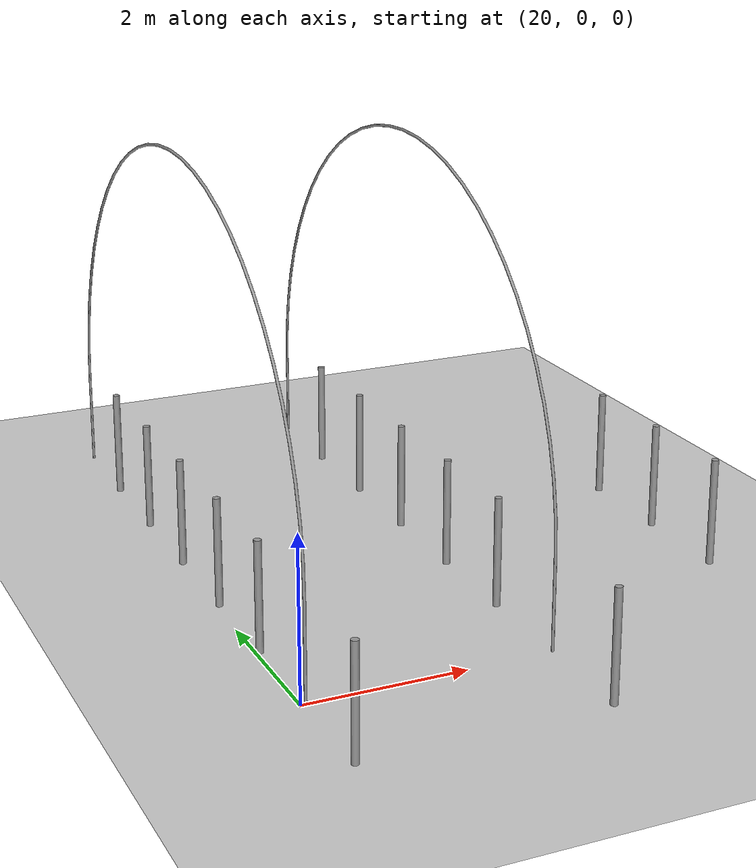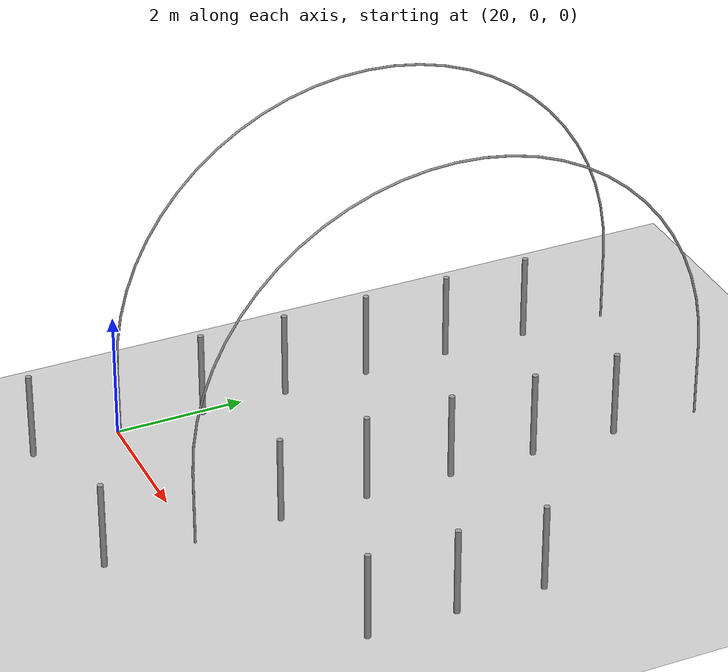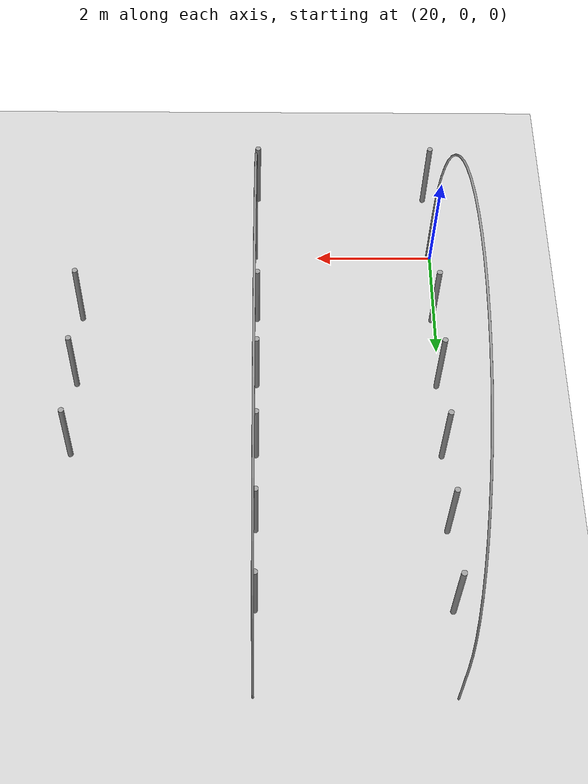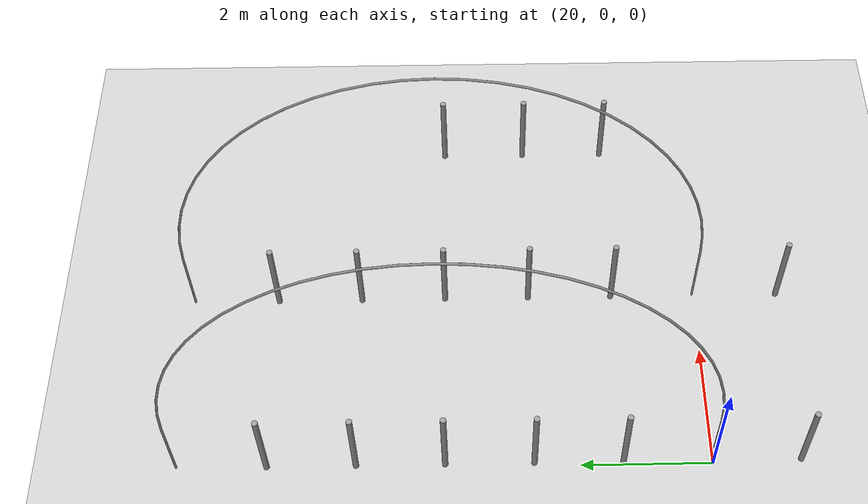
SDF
<sdf version="1.6">
 <world name="default">
  <model name="unit_cylinder_25">
   <static>1</static>
   <pose>20.05 1.35 0.691175 0 -0 0</pose>
   <link name="link">
    <inertial>
     <mass>1</mass>
     <inertia><ixz>0</ixz><ixx>1</ixx><ixy>0</ixy><izz>1</izz><iyy>1</iyy><iyz>0</iyz></inertia>
    </inertial>
    <collision name="collision">
     <geometry><cylinder><length>1.38235</length><radius>0.0456111</radius></cylinder></geometry>
    </collision>
    <visual name="visual">
     <geometry><cylinder><length>1.38235</length><radius>0.0456111</radius></cylinder></geometry>
     <material>
      <script><uri>file://media/materials/scripts/gazebo.material</uri><name>Gazebo/Grey</name></script>
     </material>
    </visual>
    <velocity_decay><linear>0</linear><angular>0</angular></velocity_decay>
   </link>
  </model>
  <model name="unit_cylinder_26">
   <static>1</static>
   <pose>20.05 2.7 0.691175 0 -0 0</pose>
   <link name="link">
    <inertial>
     <mass>1</mass>
     <inertia><ixz>0</ixz><ixx>1</ixx><ixy>0</ixy><izz>1</izz><iyy>1</iyy><iyz>0</iyz></inertia>
    </inertial>
    <collision name="collision">
     <geometry><cylinder><length>1.38235</length><radius>0.0456111</radius></cylinder></geometry>
    </collision>
    <visual name="visual">
     <geometry><cylinder><length>1.38235</length><radius>0.0456111</radius></cylinder></geometry>
     <material>
      <script><uri>file://media/materials/scripts/gazebo.material</uri><name>Gazebo/Grey</name></script>
     </material>
    </visual>
    <velocity_decay><linear>0</linear><angular>0</angular></velocity_decay>
   </link>
  </model>
  <model name="unit_cylinder_27">
   <static>1</static>
   <pose>20.05 4.05 0.691175 0 -0 0</pose>
   <link name="link">
    <inertial>
     <mass>1</mass>
     <inertia><ixz>0</ixz><ixx>1</ixx><ixy>0</ixy><izz>1</izz><iyy>1</iyy><iyz>0</iyz></inertia>
    </inertial>
    <collision name="collision">
     <geometry><cylinder><length>1.38235</length><radius>0.0456111</radius></cylinder></geometry>
    </collision>
    <visual name="visual">
     <geometry><cylinder><length>1.38235</length><radius>0.0456111</radius></cylinder></geometry>
     <material>
      <script><uri>file://media/materials/scripts/gazebo.material</uri><name>Gazebo/Grey</name></script>
     </material>
    </visual>
    <velocity_decay><linear>0</linear><angular>0</angular></velocity_decay>
   </link>
  </model>
  <model name="unit_cylinder_28">
   <static>1</static>
   <pose>20.05 5.4 0.691175 0 -0 0</pose>
   <link name="link">
    <inertial>
     <mass>1</mass>
     <inertia><ixz>0</ixz><ixx>1</ixx><ixy>0</ixy><izz>1</izz><iyy>1</iyy><iyz>0</iyz></inertia>
    </inertial>
    <collision name="collision">
     <geometry><cylinder><length>1.38235</length><radius>0.0456111</radius></cylinder></geometry>
    </collision>
    <visual name="visual">
     <geometry><cylinder><length>1.38235</length><radius>0.0456111</radius></cylinder></geometry>
     <material>
      <script><uri>file://media/materials/scripts/gazebo.material</uri><name>Gazebo/Grey</name></script>
     </material>
    </visual>
    <velocity_decay><linear>0</linear><angular>0</angular></velocity_decay>
   </link>
  </model>
  <model name="unit_cylinder_29">
   <static>1</static>
   <pose>20.05 6.75 0.691175 0 -0 0</pose>
   <link name="link">
    <inertial>
     <mass>1</mass>
     <inertia><ixz>0</ixz><ixx>1</ixx><ixy>0</ixy><izz>1</izz><iyy>1</iyy><iyz>0</iyz></inertia>
    </inertial>
    <collision name="collision">
     <geometry><cylinder><length>1.38235</length><radius>0.0456111</radius></cylinder></geometry>
    </collision>
    <visual name="visual">
     <geometry><cylinder><length>1.38235</length><radius>0.0456111</radius></cylinder></geometry>
     <material>
      <script><uri>file://media/materials/scripts/gazebo.material</uri><name>Gazebo/Grey</name></script>
     </material>
    </visual>
    <velocity_decay><linear>0</linear><angular>0</angular></velocity_decay>
   </link>
  </model>
  <model name="unit_cylinder_30">
   <static>1</static>
   <pose>23.06 1.35 0.691175 0 -0 0</pose>
   <link name="link">
    <inertial>
     <mass>1</mass>
     <inertia><ixz>0</ixz><ixx>1</ixx><ixy>0</ixy><izz>1</izz><iyy>1</iyy><iyz>0</iyz></inertia>
    </inertial>
    <collision name="collision">
     <geometry><cylinder><length>1.38235</length><radius>0.0456111</radius></cylinder></geometry>
    </collision>
    <visual name="visual">
     <geometry><cylinder><length>1.38235</length><radius>0.0456111</radius></cylinder></geometry>
     <material>
      <script><uri>file://media/materials/scripts/gazebo.material</uri><name>Gazebo/Grey</name></script>
     </material>
    </visual>
    <velocity_decay><linear>0</linear><angular>0</angular></velocity_decay>
   </link>
  </model>
  <model name="unit_cylinder_31">
   <static>1</static>
   <pose>23.06 2.7 0.691175 0 -0 0</pose>
   <link name="link">
    <inertial>
     <mass>1</mass>
     <inertia><ixz>0</ixz><ixx>1</ixx><ixy>0</ixy><izz>1</izz><iyy>1</iyy><iyz>0</iyz></inertia>
    </inertial>
    <collision name="collision">
     <geometry><cylinder><length>1.38235</length><radius>0.0456111</radius></cylinder></geometry>
    </collision>
    <visual name="visual">
     <geometry><cylinder><length>1.38235</length><radius>0.0456111</radius></cylinder></geometry>
     <material>
      <script><uri>file://media/materials/scripts/gazebo.material</uri><name>Gazebo/Grey</name></script>
     </material>
    </visual>
    <velocity_decay><linear>0</linear><angular>0</angular></velocity_decay>
   </link>
  </model>
  <model name="unit_cylinder_32">
   <static>1</static>
   <pose>23.06 4.05 0.691175 0 -0 0</pose>
   <link name="link">
    <inertial>
     <mass>1</mass>
     <inertia><ixz>0</ixz><ixx>1</ixx><ixy>0</ixy><izz>1</izz><iyy>1</iyy><iyz>0</iyz></inertia>
    </inertial>
    <collision name="collision">
     <geometry><cylinder><length>1.38235</length><radius>0.0456111</radius></cylinder></geometry>
    </collision>
    <visual name="visual">
     <geometry><cylinder><length>1.38235</length><radius>0.0456111</radius></cylinder></geometry>
     <material>
      <script><uri>file://media/materials/scripts/gazebo.material</uri><name>Gazebo/Grey</name></script>
     </material>
    </visual>
    <velocity_decay><linear>0</linear><angular>0</angular></velocity_decay>
   </link>
  </model>
  <model name="unit_cylinder_33">
   <static>1</static>
   <pose>23.06 5.4 0.691175 0 -0 0</pose>
   <link name="link">
    <inertial>
     <mass>1</mass>
     <inertia><ixz>0</ixz><ixx>1</ixx><ixy>0</ixy><izz>1</izz><iyy>1</iyy><iyz>0</iyz></inertia>
    </inertial>
    <collision name="collision">
     <geometry><cylinder><length>1.38235</length><radius>0.0456111</radius></cylinder></geometry>
    </collision>
    <visual name="visual">
     <geometry><cylinder><length>1.38235</length><radius>0.0456111</radius></cylinder></geometry>
     <material>
      <script><uri>file://media/materials/scripts/gazebo.material</uri><name>Gazebo/Grey</name></script>
     </material>
    </visual>
    <velocity_decay><linear>0</linear><angular>0</angular></velocity_decay>
   </link>
  </model>
  <model name="unit_cylinder_34">
   <static>1</static>
   <pose>23.06 6.75 0.691175 0 -0 0</pose>
   <link name="link">
    <inertial>
     <mass>1</mass>
     <inertia><ixz>0</ixz><ixx>1</ixx><ixy>0</ixy><izz>1</izz><iyy>1</iyy><iyz>0</iyz></inertia>
    </inertial>
    <collision name="collision">
     <geometry><cylinder><length>1.38235</length><radius>0.0456111</radius></cylinder></geometry>
    </collision>
    <visual name="visual">
     <geometry><cylinder><length>1.38235</length><radius>0.0456111</radius></cylinder></geometry>
     <material>
      <script><uri>file://media/materials/scripts/gazebo.material</uri><name>Gazebo/Grey</name></script>
     </material>
    </visual>
    <velocity_decay><linear>0</linear><angular>0</angular></velocity_decay>
   </link>
  </model>
  <model name="unit_cylinder_35">
   <static>1</static>
   <pose>26.07 1.35 0.691175 0 -0 0</pose>
   <link name="link">
    <inertial>
     <mass>1</mass>
     <inertia><ixz>0</ixz><ixx>1</ixx><ixy>0</ixy><izz>1</izz><iyy>1</iyy><iyz>0</iyz></inertia>
    </inertial>
    <collision name="collision">
     <geometry><cylinder><length>1.38235</length><radius>0.0456111</radius></cylinder></geometry>
    </collision>
    <visual name="visual">
     <geometry><cylinder><length>1.38235</length><radius>0.0456111</radius></cylinder></geometry>
     <material>
      <script><uri>file://media/materials/scripts/gazebo.material</uri><name>Gazebo/Grey</name></script>
     </material>
    </visual>
    <velocity_decay><linear>0</linear><angular>0</angular></velocity_decay>
   </link>
  </model>
  <model name="unit_cylinder_36">
   <static>1</static>
   <pose>26.07 2.7 0.691175 0 -0 0</pose>
   <link name="link">
    <inertial>
     <mass>1</mass>
     <inertia><ixz>0</ixz><ixx>1</ixx><ixy>0</ixy><izz>1</izz><iyy>1</iyy><iyz>0</iyz></inertia>
    </inertial>
    <collision name="collision">
     <geometry><cylinder><length>1.38235</length><radius>0.0456111</radius></cylinder></geometry>
    </collision>
    <visual name="visual">
     <geometry><cylinder><length>1.38235</length><radius>0.0456111</radius></cylinder></geometry>
     <material>
      <script><uri>file://media/materials/scripts/gazebo.material</uri><name>Gazebo/Grey</name></script>
     </material>
    </visual>
    <velocity_decay><linear>0</linear><angular>0</angular></velocity_decay>
   </link>
  </model>
  <model name="unit_cylinder_37">
   <static>1</static>
   <pose>26.07 4.05 0.691175 0 -0 0</pose>
   <link name="link">
    <inertial>
     <mass>1</mass>
     <inertia><ixz>0</ixz><ixx>1</ixx><ixy>0</ixy><izz>1</izz><iyy>1</iyy><iyz>0</iyz></inertia>
    </inertial>
    <collision name="collision">
     <geometry><cylinder><length>1.38235</length><radius>0.0456111</radius></cylinder></geometry>
    </collision>
    <visual name="visual">
     <geometry><cylinder><length>1.38235</length><radius>0.0456111</radius></cylinder></geometry>
     <material>
      <script><uri>file://media/materials/scripts/gazebo.material</uri><name>Gazebo/Grey</name></script>
     </material>
    </visual>
    <velocity_decay><linear>0</linear><angular>0</angular></velocity_decay>
   </link>
  </model>
  <model name="dummy_arch_5">
   <static>1</static>
   <pose>20.05 0 0 1.5708 -0 1.5708</pose>
   <link name="link">
    <inertial>
     <mass>1</mass>
     <inertia><ixz>0</ixz><ixx>10</ixx><ixy>0</ixy><izz>10</izz><iyy>1</iyy><iyz>10</iyz></inertia>
    </inertial>
    <collision name="collision">
     <geometry><mesh><uri>model://dummy_arch/dummy_arch.stl</uri></mesh></geometry>
    </collision>
    <visual name="visual">
     <geometry><mesh><uri>model://dummy_arch/dummy_arch.stl</uri></mesh></geometry>
     <material>
      <script><uri>file://media/materials/scripts/gazebo.material</uri><name>Gazebo/Grey</name></script>
     </material>
    </visual>
    <velocity_decay><linear>0</linear><angular>0</angular></velocity_decay>
   </link>
  </model>
  <model name="dummy_arch_6">
   <static>1</static>
   <pose>23.06 0 0 1.5708 -0 1.5708</pose>
   <link name="link">
    <inertial>
     <mass>1</mass>
     <inertia><ixz>0</ixz><ixx>10</ixx><ixy>0</ixy><izz>10</izz><iyy>1</iyy><iyz>10</iyz></inertia>
    </inertial>
    <collision name="collision">
     <geometry><mesh><uri>model://dummy_arch/dummy_arch.stl</uri></mesh></geometry>
    </collision>
    <visual name="visual">
     <geometry><mesh><uri>model://dummy_arch/dummy_arch.stl</uri></mesh></geometry>
     <material>
      <script><uri>file://media/materials/scripts/gazebo.material</uri><name>Gazebo/Grey</name></script>
     </material>
    </visual>
    <velocity_decay><linear>0</linear><angular>0</angular></velocity_decay>
   </link>
  </model>
  <model name="unit_cylinder_79">
   <static>1</static>
   <pose>20.05 -1.35 0.691175 0 -0 0</pose>
   <link name="link">
    <inertial>
     <mass>1</mass>
     <inertia><ixz>0</ixz><ixx>1</ixx><ixy>0</ixy><izz>1</izz><iyy>1</iyy><iyz>0</iyz></inertia>
    </inertial>
    <collision name="collision">
     <geometry><cylinder><length>1.38235</length><radius>0.0456111</radius></cylinder></geometry>
    </collision>
    <visual name="visual">
     <geometry><cylinder><length>1.38235</length><radius>0.0456111</radius></cylinder></geometry>
     <material>
      <script><uri>file://media/materials/scripts/gazebo.material</uri><name>Gazebo/Grey</name></script>
     </material>
    </visual>
    <velocity_decay><linear>0</linear><angular>0</angular></velocity_decay>
   </link>
  </model>
  <model name="unit_cylinder_84">
   <static>1</static>
   <pose>23.06 -1.35 0.691175 0 -0 0</pose>
   <link name="link">
    <inertial>
     <mass>1</mass>
     <inertia><ixz>0</ixz><ixx>1</ixx><ixy>0</ixy><izz>1</izz><iyy>1</iyy><iyz>0</iyz></inertia>
    </inertial>
    <collision name="collision">
     <geometry><cylinder><length>1.38235</length><radius>0.0456111</radius></cylinder></geometry>
    </collision>
    <visual name="visual">
     <geometry><cylinder><length>1.38235</length><radius>0.0456111</radius></cylinder></geometry>
     <material>
      <script><uri>file://media/materials/scripts/gazebo.material</uri><name>Gazebo/Grey</name></script>
     </material>
    </visual>
    <velocity_decay><linear>0</linear><angular>0</angular></velocity_decay>
   </link>
  </model>
  <model name="ground_plane">
   <static>1</static>
   <link name="link">
    <collision name="collision">
     <geometry><plane><normal>0 0 1</normal><size>100 100</size></plane></geometry>
     <surface><friction><ode><mu>100</mu><mu2>50</mu2></ode></friction></surface>
    </collision>
    <visual name="visual">
     <cast_shadows>0</cast_shadows>
     <geometry><plane><normal>0 0 1</normal><size>100 100</size></plane></geometry>
     <material>
      <script><uri>file://media/materials/scripts/gazebo.material</uri><name>Gazebo/Grey</name></script>
     </material>
    </visual>
   </link>
  </model>
 </world>
</sdf>
